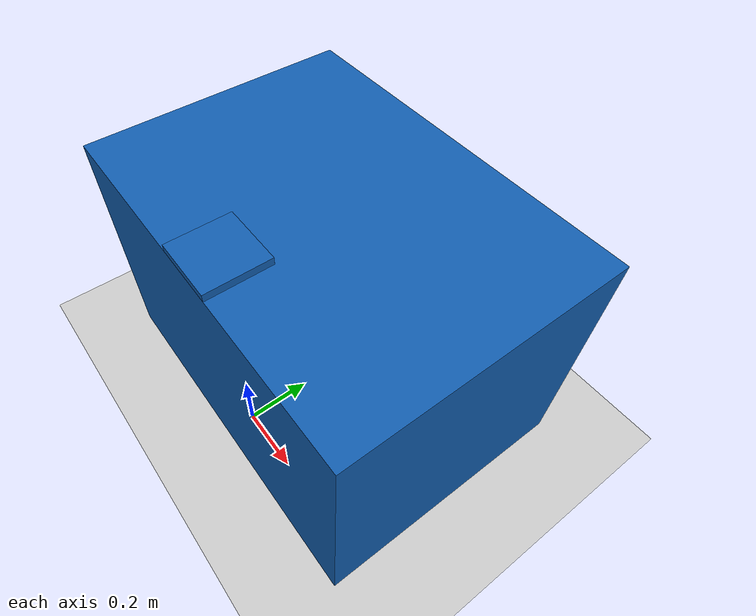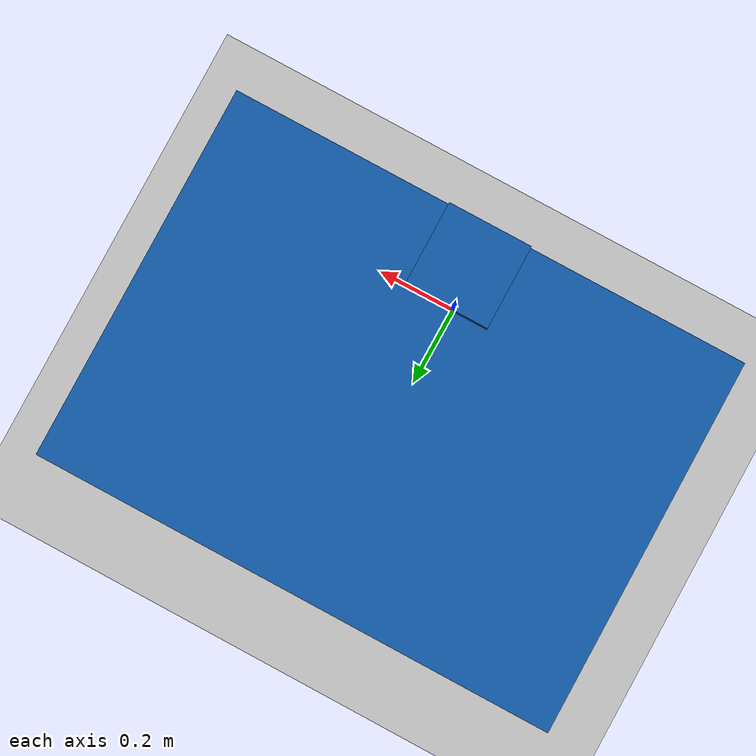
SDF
<?xml version="1.0" ?>

<sdf version="1.6">
  <world name="enme480_sim">

  <physics type="ode">
    <max_step_size>0.003</max_step_size>
    <real_time_factor>1.0</real_time_factor>
    <real_time_update_rate>1000</real_time_update_rate>
    <gravity>0 0 -9.8</gravity>
  </physics>

  <!-- Plugin for simulating physics -->
  <plugin
    filename="ignition-gazebo-physics-system"
    name="gz::sim::systems::Physics">
  </plugin>

  <!-- Plugin for handling user commands -->
  <plugin
    filename="ignition-gazebo-user-commands-system"
    name="gz::sim::systems::UserCommands">
  </plugin>

  <!-- Plugin for broadcasting scene updates -->
  <plugin
    filename="ignition-gazebo-scene-broadcaster-system"
    name="gz::sim::systems::SceneBroadcaster">
  </plugin>

  <plugin
    filename="ignition-gazebo-contact-system"
    name="gz::sim::systems::Contact">
  </plugin>

  <!-- Plugin for sensor handling -->
  <plugin
    filename="ignition-gazebo-sensors-system"
    name="gz::sim::systems::Sensors">
    <render_engine>ogre</render_engine>
  </plugin>

  <light type="directional" name="sun">
    <cast_shadows>false</cast_shadows>
    <pose>0 0 10 0 0 0</pose>
    <diffuse>0.8 0.8 0.8 1</diffuse>
    <specular>0.2 0.2 0.2 1</specular>
    <attenuation>
      <range>1000</range>
      <constant>0.9</constant>
      <linear>0.01</linear>
      <quadratic>0.001</quadratic>
    </attenuation>
    <direction>-0.5 0.1 -0.9</direction>
  </light>

  <model name="ground_plane">
    <static>true</static>
    <link name="link">
      <collision name="collision">
        <geometry>
          <plane>
            <normal>0 0 1</normal>
            <size>100 100</size>
          </plane>
        </geometry>
      </collision>
      <visual name="visual">
        <geometry>
          <plane>
            <normal>0 0 1</normal>
            <size>100 100</size>
          </plane>
        </geometry>
        <material>
          <ambient>0.8 0.8 0.8 1</ambient>
          <diffuse>0.8 0.8 0.8 1</diffuse>
          <specular>0.8 0.8 0.8 1</specular>
        </material>
      </visual>
    </link>
  </model>

  <model name='arm_stand'>
    <pose>0 0.3145 0.3775 0 0 0</pose>
    <static>true</static>
    <link name='stand_link'>
      <collision name='stand_link_collision'>
        <geometry>
          <box>
            <size>1.125 0.810 0.755</size>  <!-- x, y, z dimensions in meters -->
          </box>
        </geometry>
      </collision>
      <visual name='stand_link_visual'>
        <geometry>
          <box>
            <size>1.125 0.810 0.755</size>  <!-- x, y, z dimensions in meters -->
          </box>
        </geometry>
        <material>
          <!-- RGBA values: red, green, blue, alpha -->
          <diffuse>0.071 0.373 0.694 1.0</diffuse>
          <specular>0.5 0.5 0.5 1</specular>
        </material>
      </visual>
    </link>
  </model>

  <model name='arm_holder'>
    <pose>0 0 0.766 0 0 0</pose>
    <static>true</static>
    <link name='holder_link'>
      <collision name='holder_link_collision'>
        <geometry>
          <box>
            <size>0.181 0.181 0.022</size>  <!-- x, y, z dimensions in meters -->
          </box>
        </geometry>
      </collision>
      <visual name='holder_link_visual'>
        <geometry>
          <box>
            <size>0.181 0.181 0.022</size>  <!-- x, y, z dimensions in meters -->
          </box>
        </geometry>
        <material>
          <!-- RGBA values: red, green, blue, alpha -->
          <diffuse>0.071 0.373 0.694 1.0</diffuse>
          <specular>0.5 0.5 0.5 1</specular>
        </material>
      </visual>
    </link>
  </model>

  </world>
</sdf>
